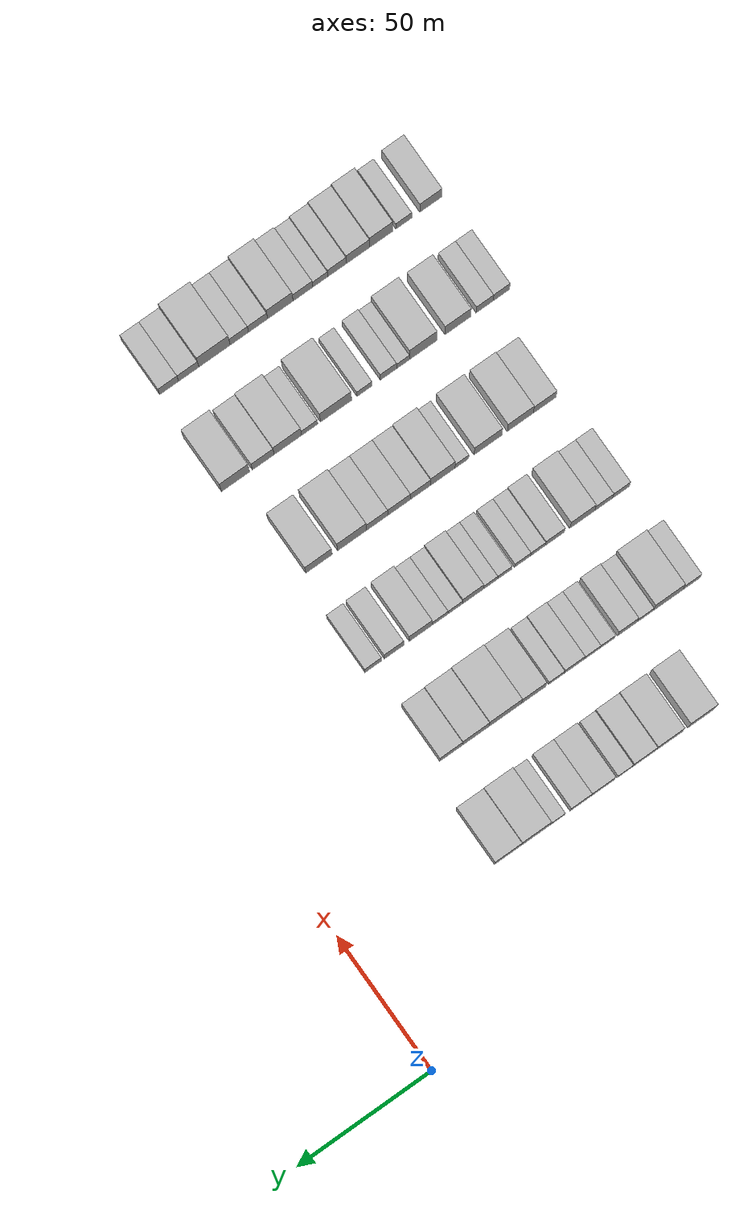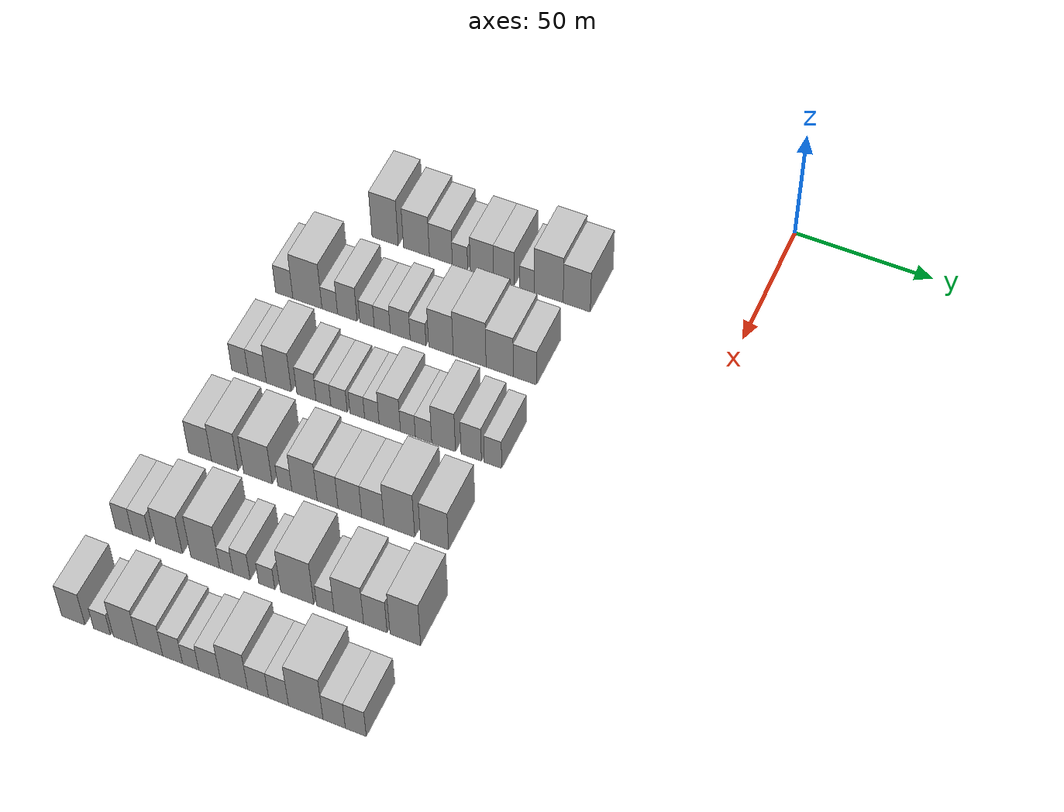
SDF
<sdf version="1.6">
 <world name="default">
  <model name="building_47">
   <static>1</static>
   <pose>50.0000 -127.9156 0 0.000000 0.000000 0.000000</pose>
   <link name="link">
    <pose>0 0 12.00 0 0 0</pose>
    <collision name="collision"><geometry><box><size>20.0000 10.0104 24.0000</size></box></geometry></collision>
    <visual name="visual">
     <cast_shadows>0</cast_shadows>
     <geometry><box><size>20.0000 10.0104 24.0000</size></box></geometry>
     <material>
      <script>
       <uri>model://HANNAS_wall/materials/scripts</uri>
       <uri>model://HANNAS_wall/materials/textures</uri>
       <name>vrc/HANNAS_wall</name>
      </script>
     </material>
    </visual>
   </link>
  </model>
  <model name="building_48">
   <static>1</static>
   <pose>50.0000 -116.0045 0 0.000000 0.000000 0.000000</pose>
   <link name="link">
    <pose>0 0 10.50 0 0 0</pose>
    <collision name="collision"><geometry><box><size>20.0000 9.8119 21.0000</size></box></geometry></collision>
    <visual name="visual">
     <cast_shadows>0</cast_shadows>
     <geometry><box><size>20.0000 9.8119 21.0000</size></box></geometry>
     <material>
      <script>
       <uri>model://HANNAS_wall/materials/scripts</uri>
       <uri>model://HANNAS_wall/materials/textures</uri>
       <name>vrc/HANNAS_wall</name>
      </script>
     </material>
    </visual>
   </link>
  </model>
  <model name="building_49">
   <static>1</static>
   <pose>50.0000 -106.7818 0 0.000000 0.000000 0.000000</pose>
   <link name="link">
    <pose>0 0 9.00 0 0 0</pose>
    <collision name="collision"><geometry><box><size>20.0000 8.6334 18.0000</size></box></geometry></collision>
    <visual name="visual">
     <cast_shadows>0</cast_shadows>
     <geometry><box><size>20.0000 8.6334 18.0000</size></box></geometry>
     <material>
      <script>
       <uri>model://HANNAS_wall/materials/scripts</uri>
       <uri>model://HANNAS_wall/materials/textures</uri>
       <name>vrc/HANNAS_wall</name>
      </script>
     </material>
    </visual>
   </link>
  </model>
  <model name="building_50">
   <static>1</static>
   <pose>50.0000 -99.5850 0 0.000000 0.000000 0.000000</pose>
   <link name="link">
    <pose>0 0 6.00 0 0 0</pose>
    <collision name="collision"><geometry><box><size>20.0000 5.7603 12.0000</size></box></geometry></collision>
    <visual name="visual">
     <cast_shadows>0</cast_shadows>
     <geometry><box><size>20.0000 5.7603 12.0000</size></box></geometry>
     <material>
      <script>
       <uri>model://HANNAS_wall/materials/scripts</uri>
       <uri>model://HANNAS_wall/materials/textures</uri>
       <name>vrc/HANNAS_wall</name>
      </script>
     </material>
    </visual>
   </link>
  </model>
  <model name="building_51">
   <static>1</static>
   <pose>50.0000 -91.3569 0 0.000000 0.000000 0.000000</pose>
   <link name="link">
    <pose>0 0 9.00 0 0 0</pose>
    <collision name="collision"><geometry><box><size>20.0000 8.6960 18.0000</size></box></geometry></collision>
    <visual name="visual">
     <cast_shadows>0</cast_shadows>
     <geometry><box><size>20.0000 8.6960 18.0000</size></box></geometry>
     <material>
      <script>
       <uri>model://HANNAS_wall/materials/scripts</uri>
       <uri>model://HANNAS_wall/materials/textures</uri>
       <name>vrc/HANNAS_wall</name>
      </script>
     </material>
    </visual>
   </link>
  </model>
  <model name="building_52">
   <static>1</static>
   <pose>50.0000 -83.1572 0 0.000000 0.000000 0.000000</pose>
   <link name="link">
    <pose>0 0 9.00 0 0 0</pose>
    <collision name="collision"><geometry><box><size>20.0000 7.7034 18.0000</size></box></geometry></collision>
    <visual name="visual">
     <cast_shadows>0</cast_shadows>
     <geometry><box><size>20.0000 7.7034 18.0000</size></box></geometry>
     <material>
      <script>
       <uri>model://HANNAS_wall/materials/scripts</uri>
       <uri>model://HANNAS_wall/materials/textures</uri>
       <name>vrc/HANNAS_wall</name>
      </script>
     </material>
    </visual>
   </link>
  </model>
  <model name="building_53">
   <static>1</static>
   <pose>50.0000 -74.6181 0 0.000000 0.000000 0.000000</pose>
   <link name="link">
    <pose>0 0 6.00 0 0 0</pose>
    <collision name="collision"><geometry><box><size>20.0000 5.3748 12.0000</size></box></geometry></collision>
    <visual name="visual">
     <cast_shadows>0</cast_shadows>
     <geometry><box><size>20.0000 5.3748 12.0000</size></box></geometry>
     <material>
      <script>
       <uri>model://HANNAS_wall/materials/scripts</uri>
       <uri>model://HANNAS_wall/materials/textures</uri>
       <name>vrc/HANNAS_wall</name>
      </script>
     </material>
    </visual>
   </link>
  </model>
  <model name="building_54">
   <static>1</static>
   <pose>50.0000 -66.5913 0 0.000000 0.000000 0.000000</pose>
   <link name="link">
    <pose>0 0 12.00 0 0 0</pose>
    <collision name="collision"><geometry><box><size>20.0000 10.6787 24.0000</size></box></geometry></collision>
    <visual name="visual">
     <cast_shadows>0</cast_shadows>
     <geometry><box><size>20.0000 10.6787 24.0000</size></box></geometry>
     <material>
      <script>
       <uri>model://HANNAS_wall/materials/scripts</uri>
       <uri>model://HANNAS_wall/materials/textures</uri>
       <name>vrc/HANNAS_wall</name>
      </script>
     </material>
    </visual>
   </link>
  </model>
  <model name="building_55">
   <static>1</static>
   <pose>50.0000 -56.2801 0 0.000000 0.000000 0.000000</pose>
   <link name="link">
    <pose>0 0 10.50 0 0 0</pose>
    <collision name="collision"><geometry><box><size>20.0000 9.9435 21.0000</size></box></geometry></collision>
    <visual name="visual">
     <cast_shadows>0</cast_shadows>
     <geometry><box><size>20.0000 9.9435 21.0000</size></box></geometry>
     <material>
      <script>
       <uri>model://HANNAS_wall/materials/scripts</uri>
       <uri>model://HANNAS_wall/materials/textures</uri>
       <name>vrc/HANNAS_wall</name>
      </script>
     </material>
    </visual>
   </link>
  </model>
  <model name="building_164">
   <static>1</static>
   <pose>85.0000 -149.0392 0 0.000000 0.000000 0.000000</pose>
   <link name="link">
    <pose>0 0 7.50 0 0 0</pose>
    <collision name="collision"><geometry><box><size>20.0000 6.5100 15.0000</size></box></geometry></collision>
    <visual name="visual">
     <cast_shadows>0</cast_shadows>
     <geometry><box><size>20.0000 6.5100 15.0000</size></box></geometry>
     <material>
      <script>
       <uri>model://HANNAS_wall/materials/scripts</uri>
       <uri>model://HANNAS_wall/materials/textures</uri>
       <name>vrc/HANNAS_wall</name>
      </script>
     </material>
    </visual>
   </link>
  </model>
  <model name="building_165">
   <static>1</static>
   <pose>85.0000 -140.2922 0 0.000000 0.000000 0.000000</pose>
   <link name="link">
    <pose>0 0 12.00 0 0 0</pose>
    <collision name="collision"><geometry><box><size>20.0000 10.9840 24.0000</size></box></geometry></collision>
    <visual name="visual">
     <cast_shadows>0</cast_shadows>
     <geometry><box><size>20.0000 10.9840 24.0000</size></box></geometry>
     <material>
      <script>
       <uri>model://HANNAS_wall/materials/scripts</uri>
       <uri>model://HANNAS_wall/materials/textures</uri>
       <name>vrc/HANNAS_wall</name>
      </script>
     </material>
    </visual>
   </link>
  </model>
  <model name="building_166">
   <static>1</static>
   <pose>85.0000 -131.8723 0 0.000000 0.000000 0.000000</pose>
   <link name="link">
    <pose>0 0 6.00 0 0 0</pose>
    <collision name="collision"><geometry><box><size>20.0000 5.8558 12.0000</size></box></geometry></collision>
    <visual name="visual">
     <cast_shadows>0</cast_shadows>
     <geometry><box><size>20.0000 5.8558 12.0000</size></box></geometry>
     <material>
      <script>
       <uri>model://HANNAS_wall/materials/scripts</uri>
       <uri>model://HANNAS_wall/materials/textures</uri>
       <name>vrc/HANNAS_wall</name>
      </script>
     </material>
    </visual>
   </link>
  </model>
  <model name="building_167">
   <static>1</static>
   <pose>85.0000 -125.2874 0 0.000000 0.000000 0.000000</pose>
   <link name="link">
    <pose>0 0 9.00 0 0 0</pose>
    <collision name="collision"><geometry><box><size>20.0000 7.3140 18.0000</size></box></geometry></collision>
    <visual name="visual">
     <cast_shadows>0</cast_shadows>
     <geometry><box><size>20.0000 7.3140 18.0000</size></box></geometry>
     <material>
      <script>
       <uri>model://HANNAS_wall/materials/scripts</uri>
       <uri>model://HANNAS_wall/materials/textures</uri>
       <name>vrc/HANNAS_wall</name>
      </script>
     </material>
    </visual>
   </link>
  </model>
  <model name="building_168">
   <static>1</static>
   <pose>85.0000 -117.9332 0 0.000000 0.000000 0.000000</pose>
   <link name="link">
    <pose>0 0 6.00 0 0 0</pose>
    <collision name="collision"><geometry><box><size>20.0000 5.3945 12.0000</size></box></geometry></collision>
    <visual name="visual">
     <cast_shadows>0</cast_shadows>
     <geometry><box><size>20.0000 5.3945 12.0000</size></box></geometry>
     <material>
      <script>
       <uri>model://HANNAS_wall/materials/scripts</uri>
       <uri>model://HANNAS_wall/materials/textures</uri>
       <name>vrc/HANNAS_wall</name>
      </script>
     </material>
    </visual>
   </link>
  </model>
  <model name="building_169">
   <static>1</static>
   <pose>85.0000 -112.2556 0 0.000000 0.000000 0.000000</pose>
   <link name="link">
    <pose>0 0 6.00 0 0 0</pose>
    <collision name="collision"><geometry><box><size>20.0000 5.9608 12.0000</size></box></geometry></collision>
    <visual name="visual">
     <cast_shadows>0</cast_shadows>
     <geometry><box><size>20.0000 5.9608 12.0000</size></box></geometry>
     <material>
      <script>
       <uri>model://HANNAS_wall/materials/scripts</uri>
       <uri>model://HANNAS_wall/materials/textures</uri>
       <name>vrc/HANNAS_wall</name>
      </script>
     </material>
    </visual>
   </link>
  </model>
  <model name="building_170">
   <static>1</static>
   <pose>85.0000 -105.5950 0 0.000000 0.000000 0.000000</pose>
   <link name="link">
    <pose>0 0 7.50 0 0 0</pose>
    <collision name="collision"><geometry><box><size>20.0000 7.3603 15.0000</size></box></geometry></collision>
    <visual name="visual">
     <cast_shadows>0</cast_shadows>
     <geometry><box><size>20.0000 7.3603 15.0000</size></box></geometry>
     <material>
      <script>
       <uri>model://HANNAS_wall/materials/scripts</uri>
       <uri>model://HANNAS_wall/materials/textures</uri>
       <name>vrc/HANNAS_wall</name>
      </script>
     </material>
    </visual>
   </link>
  </model>
  <model name="building_171">
   <static>1</static>
   <pose>85.0000 -98.9970 0 0.000000 0.000000 0.000000</pose>
   <link name="link">
    <pose>0 0 6.00 0 0 0</pose>
    <collision name="collision"><geometry><box><size>20.0000 5.8358 12.0000</size></box></geometry></collision>
    <visual name="visual">
     <cast_shadows>0</cast_shadows>
     <geometry><box><size>20.0000 5.8358 12.0000</size></box></geometry>
     <material>
      <script>
       <uri>model://HANNAS_wall/materials/scripts</uri>
       <uri>model://HANNAS_wall/materials/textures</uri>
       <name>vrc/HANNAS_wall</name>
      </script>
     </material>
    </visual>
   </link>
  </model>
  <model name="building_172">
   <static>1</static>
   <pose>85.0000 -90.5649 0 0.000000 0.000000 0.000000</pose>
   <link name="link">
    <pose>0 0 10.50 0 0 0</pose>
    <collision name="collision"><geometry><box><size>20.0000 9.0284 21.0000</size></box></geometry></collision>
    <visual name="visual">
     <cast_shadows>0</cast_shadows>
     <geometry><box><size>20.0000 9.0284 21.0000</size></box></geometry>
     <material>
      <script>
       <uri>model://HANNAS_wall/materials/scripts</uri>
       <uri>model://HANNAS_wall/materials/textures</uri>
       <name>vrc/HANNAS_wall</name>
      </script>
     </material>
    </visual>
   </link>
  </model>
  <model name="building_173">
   <static>1</static>
   <pose>85.0000 -80.0565 0 0.000000 0.000000 0.000000</pose>
   <link name="link">
    <pose>0 0 12.00 0 0 0</pose>
    <collision name="collision"><geometry><box><size>20.0000 11.9884 24.0000</size></box></geometry></collision>
    <visual name="visual">
     <cast_shadows>0</cast_shadows>
     <geometry><box><size>20.0000 11.9884 24.0000</size></box></geometry>
     <material>
      <script>
       <uri>model://HANNAS_wall/materials/scripts</uri>
       <uri>model://HANNAS_wall/materials/textures</uri>
       <name>vrc/HANNAS_wall</name>
      </script>
     </material>
    </visual>
   </link>
  </model>
  <model name="building_174">
   <static>1</static>
   <pose>85.0000 -69.1293 0 0.000000 0.000000 0.000000</pose>
   <link name="link">
    <pose>0 0 10.50 0 0 0</pose>
    <collision name="collision"><geometry><box><size>20.0000 9.8661 21.0000</size></box></geometry></collision>
    <visual name="visual">
     <cast_shadows>0</cast_shadows>
     <geometry><box><size>20.0000 9.8661 21.0000</size></box></geometry>
     <material>
      <script>
       <uri>model://HANNAS_wall/materials/scripts</uri>
       <uri>model://HANNAS_wall/materials/textures</uri>
       <name>vrc/HANNAS_wall</name>
      </script>
     </material>
    </visual>
   </link>
  </model>
  <model name="building_175">
   <static>1</static>
   <pose>85.0000 -59.9994 0 0.000000 0.000000 0.000000</pose>
   <link name="link">
    <pose>0 0 9.00 0 0 0</pose>
    <collision name="collision"><geometry><box><size>20.0000 8.3937 18.0000</size></box></geometry></collision>
    <visual name="visual">
     <cast_shadows>0</cast_shadows>
     <geometry><box><size>20.0000 8.3937 18.0000</size></box></geometry>
     <material>
      <script>
       <uri>model://HANNAS_wall/materials/scripts</uri>
       <uri>model://HANNAS_wall/materials/textures</uri>
       <name>vrc/HANNAS_wall</name>
      </script>
     </material>
    </visual>
   </link>
  </model>
  <model name="building_296">
   <static>1</static>
   <pose>120.0000 -147.7365 0 0.000000 0.000000 0.000000</pose>
   <link name="link">
    <pose>0 0 7.50 0 0 0</pose>
    <collision name="collision"><geometry><box><size>20.0000 6.1762 15.0000</size></box></geometry></collision>
    <visual name="visual">
     <cast_shadows>0</cast_shadows>
     <geometry><box><size>20.0000 6.1762 15.0000</size></box></geometry>
     <material>
      <script>
       <uri>model://HANNAS_wall/materials/scripts</uri>
       <uri>model://HANNAS_wall/materials/textures</uri>
       <name>vrc/HANNAS_wall</name>
      </script>
     </material>
    </visual>
   </link>
  </model>
  <model name="building_297">
   <static>1</static>
   <pose>120.0000 -141.2915 0 0.000000 0.000000 0.000000</pose>
   <link name="link">
    <pose>0 0 7.50 0 0 0</pose>
    <collision name="collision"><geometry><box><size>20.0000 6.7138 15.0000</size></box></geometry></collision>
    <visual name="visual">
     <cast_shadows>0</cast_shadows>
     <geometry><box><size>20.0000 6.7138 15.0000</size></box></geometry>
     <material>
      <script>
       <uri>model://HANNAS_wall/materials/scripts</uri>
       <uri>model://HANNAS_wall/materials/textures</uri>
       <name>vrc/HANNAS_wall</name>
      </script>
     </material>
    </visual>
   </link>
  </model>
  <model name="building_298">
   <static>1</static>
   <pose>120.0000 -133.3171 0 0.000000 0.000000 0.000000</pose>
   <link name="link">
    <pose>0 0 10.50 0 0 0</pose>
    <collision name="collision"><geometry><box><size>20.0000 9.2349 21.0000</size></box></geometry></collision>
    <visual name="visual">
     <cast_shadows>0</cast_shadows>
     <geometry><box><size>20.0000 9.2349 21.0000</size></box></geometry>
     <material>
      <script>
       <uri>model://HANNAS_wall/materials/scripts</uri>
       <uri>model://HANNAS_wall/materials/textures</uri>
       <name>vrc/HANNAS_wall</name>
      </script>
     </material>
    </visual>
   </link>
  </model>
  <model name="building_299">
   <static>1</static>
   <pose>120.0000 -123.1581 0 0.000000 0.000000 0.000000</pose>
   <link name="link">
    <pose>0 0 7.50 0 0 0</pose>
    <collision name="collision"><geometry><box><size>20.0000 7.0833 15.0000</size></box></geometry></collision>
    <visual name="visual">
     <cast_shadows>0</cast_shadows>
     <geometry><box><size>20.0000 7.0833 15.0000</size></box></geometry>
     <material>
      <script>
       <uri>model://HANNAS_wall/materials/scripts</uri>
       <uri>model://HANNAS_wall/materials/textures</uri>
       <name>vrc/HANNAS_wall</name>
      </script>
     </material>
    </visual>
   </link>
  </model>
  <model name="building_300">
   <static>1</static>
   <pose>120.0000 -116.9021 0 0.000000 0.000000 0.000000</pose>
   <link name="link">
    <pose>0 0 6.00 0 0 0</pose>
    <collision name="collision"><geometry><box><size>20.0000 5.4286 12.0000</size></box></geometry></collision>
    <visual name="visual">
     <cast_shadows>0</cast_shadows>
     <geometry><box><size>20.0000 5.4286 12.0000</size></box></geometry>
     <material>
      <script>
       <uri>model://HANNAS_wall/materials/scripts</uri>
       <uri>model://HANNAS_wall/materials/textures</uri>
       <name>vrc/HANNAS_wall</name>
      </script>
     </material>
    </visual>
   </link>
  </model>
  <model name="building_301">
   <static>1</static>
   <pose>120.0000 -111.2069 0 0.000000 0.000000 0.000000</pose>
   <link name="link">
    <pose>0 0 6.00 0 0 0</pose>
    <collision name="collision"><geometry><box><size>20.0000 5.9618 12.0000</size></box></geometry></collision>
    <visual name="visual">
     <cast_shadows>0</cast_shadows>
     <geometry><box><size>20.0000 5.9618 12.0000</size></box></geometry>
     <material>
      <script>
       <uri>model://HANNAS_wall/materials/scripts</uri>
       <uri>model://HANNAS_wall/materials/textures</uri>
       <name>vrc/HANNAS_wall</name>
      </script>
     </material>
    </visual>
   </link>
  </model>
  <model name="building_302">
   <static>1</static>
   <pose>120.0000 -104.5623 0 0.000000 0.000000 0.000000</pose>
   <link name="link">
    <pose>0 0 6.00 0 0 0</pose>
    <collision name="collision"><geometry><box><size>20.0000 5.3275 12.0000</size></box></geometry></collision>
    <visual name="visual">
     <cast_shadows>0</cast_shadows>
     <geometry><box><size>20.0000 5.3275 12.0000</size></box></geometry>
     <material>
      <script>
       <uri>model://HANNAS_wall/materials/scripts</uri>
       <uri>model://HANNAS_wall/materials/textures</uri>
       <name>vrc/HANNAS_wall</name>
      </script>
     </material>
    </visual>
   </link>
  </model>
  <model name="building_303">
   <static>1</static>
   <pose>120.0000 -99.2772 0 0.000000 0.000000 0.000000</pose>
   <link name="link">
    <pose>0 0 6.00 0 0 0</pose>
    <collision name="collision"><geometry><box><size>20.0000 5.2427 12.0000</size></box></geometry></collision>
    <visual name="visual">
     <cast_shadows>0</cast_shadows>
     <geometry><box><size>20.0000 5.2427 12.0000</size></box></geometry>
     <material>
      <script>
       <uri>model://HANNAS_wall/materials/scripts</uri>
       <uri>model://HANNAS_wall/materials/textures</uri>
       <name>vrc/HANNAS_wall</name>
      </script>
     </material>
    </visual>
   </link>
  </model>
  <model name="building_304">
   <static>1</static>
   <pose>120.0000 -92.7966 0 0.000000 0.000000 0.000000</pose>
   <link name="link">
    <pose>0 0 9.00 0 0 0</pose>
    <collision name="collision"><geometry><box><size>20.0000 7.7185 18.0000</size></box></geometry></collision>
    <visual name="visual">
     <cast_shadows>0</cast_shadows>
     <geometry><box><size>20.0000 7.7185 18.0000</size></box></geometry>
     <material>
      <script>
       <uri>model://HANNAS_wall/materials/scripts</uri>
       <uri>model://HANNAS_wall/materials/textures</uri>
       <name>vrc/HANNAS_wall</name>
      </script>
     </material>
    </visual>
   </link>
  </model>
  <model name="building_305">
   <static>1</static>
   <pose>120.0000 -86.2622 0 0.000000 0.000000 0.000000</pose>
   <link name="link">
    <pose>0 0 6.00 0 0 0</pose>
    <collision name="collision"><geometry><box><size>20.0000 5.3503 12.0000</size></box></geometry></collision>
    <visual name="visual">
     <cast_shadows>0</cast_shadows>
     <geometry><box><size>20.0000 5.3503 12.0000</size></box></geometry>
     <material>
      <script>
       <uri>model://HANNAS_wall/materials/scripts</uri>
       <uri>model://HANNAS_wall/materials/textures</uri>
       <name>vrc/HANNAS_wall</name>
      </script>
     </material>
    </visual>
   </link>
  </model>
  <model name="building_306">
   <static>1</static>
   <pose>120.0000 -80.6427 0 0.000000 0.000000 0.000000</pose>
   <link name="link">
    <pose>0 0 6.00 0 0 0</pose>
    <collision name="collision"><geometry><box><size>20.0000 5.8887 12.0000</size></box></geometry></collision>
    <visual name="visual">
     <cast_shadows>0</cast_shadows>
     <geometry><box><size>20.0000 5.8887 12.0000</size></box></geometry>
     <material>
      <script>
       <uri>model://HANNAS_wall/materials/scripts</uri>
       <uri>model://HANNAS_wall/materials/textures</uri>
       <name>vrc/HANNAS_wall</name>
      </script>
     </material>
    </visual>
   </link>
  </model>
  <model name="building_307">
   <static>1</static>
   <pose>120.0000 -73.4579 0 0.000000 0.000000 0.000000</pose>
   <link name="link">
    <pose>0 0 10.50 0 0 0</pose>
    <collision name="collision"><geometry><box><size>20.0000 8.4810 21.0000</size></box></geometry></collision>
    <visual name="visual">
     <cast_shadows>0</cast_shadows>
     <geometry><box><size>20.0000 8.4810 21.0000</size></box></geometry>
     <material>
      <script>
       <uri>model://HANNAS_wall/materials/scripts</uri>
       <uri>model://HANNAS_wall/materials/textures</uri>
       <name>vrc/HANNAS_wall</name>
      </script>
     </material>
    </visual>
   </link>
  </model>
  <model name="building_308">
   <static>1</static>
   <pose>120.0000 -63.6057 0 0.000000 0.000000 0.000000</pose>
   <link name="link">
    <pose>0 0 9.00 0 0 0</pose>
    <collision name="collision"><geometry><box><size>20.0000 7.2233 18.0000</size></box></geometry></collision>
    <visual name="visual">
     <cast_shadows>0</cast_shadows>
     <geometry><box><size>20.0000 7.2233 18.0000</size></box></geometry>
     <material>
      <script>
       <uri>model://HANNAS_wall/materials/scripts</uri>
       <uri>model://HANNAS_wall/materials/textures</uri>
       <name>vrc/HANNAS_wall</name>
      </script>
     </material>
    </visual>
   </link>
  </model>
  <model name="building_309">
   <static>1</static>
   <pose>120.0000 -55.9099 0 0.000000 0.000000 0.000000</pose>
   <link name="link">
    <pose>0 0 7.50 0 0 0</pose>
    <collision name="collision"><geometry><box><size>20.0000 6.1684 15.0000</size></box></geometry></collision>
    <visual name="visual">
     <cast_shadows>0</cast_shadows>
     <geometry><box><size>20.0000 6.1684 15.0000</size></box></geometry>
     <material>
      <script>
       <uri>model://HANNAS_wall/materials/scripts</uri>
       <uri>model://HANNAS_wall/materials/textures</uri>
       <name>vrc/HANNAS_wall</name>
      </script>
     </material>
    </visual>
   </link>
  </model>
  <model name="building_426">
   <static>1</static>
   <pose>155.0000 -144.1316 0 0.000000 0.000000 0.000000</pose>
   <link name="link">
    <pose>0 0 9.00 0 0 0</pose>
    <collision name="collision"><geometry><box><size>20.0000 8.4185 18.0000</size></box></geometry></collision>
    <visual name="visual">
     <cast_shadows>0</cast_shadows>
     <geometry><box><size>20.0000 8.4185 18.0000</size></box></geometry>
     <material>
      <script>
       <uri>model://HANNAS_wall/materials/scripts</uri>
       <uri>model://HANNAS_wall/materials/textures</uri>
       <name>vrc/HANNAS_wall</name>
      </script>
     </material>
    </visual>
   </link>
  </model>
  <model name="building_427">
   <static>1</static>
   <pose>155.0000 -135.0922 0 0.000000 0.000000 0.000000</pose>
   <link name="link">
    <pose>0 0 10.50 0 0 0</pose>
    <collision name="collision"><geometry><box><size>20.0000 9.6602 21.0000</size></box></geometry></collision>
    <visual name="visual">
     <cast_shadows>0</cast_shadows>
     <geometry><box><size>20.0000 9.6602 21.0000</size></box></geometry>
     <material>
      <script>
       <uri>model://HANNAS_wall/materials/scripts</uri>
       <uri>model://HANNAS_wall/materials/textures</uri>
       <name>vrc/HANNAS_wall</name>
      </script>
     </material>
    </visual>
   </link>
  </model>
  <model name="building_428">
   <static>1</static>
   <pose>155.0000 -123.1001 0 0.000000 0.000000 0.000000</pose>
   <link name="link">
    <pose>0 0 10.50 0 0 0</pose>
    <collision name="collision"><geometry><box><size>20.0000 10.3241 21.0000</size></box></geometry></collision>
    <visual name="visual">
     <cast_shadows>0</cast_shadows>
     <geometry><box><size>20.0000 10.3241 21.0000</size></box></geometry>
     <material>
      <script>
       <uri>model://HANNAS_wall/materials/scripts</uri>
       <uri>model://HANNAS_wall/materials/textures</uri>
       <name>vrc/HANNAS_wall</name>
      </script>
     </material>
    </visual>
   </link>
  </model>
  <model name="building_429">
   <static>1</static>
   <pose>155.0000 -113.3941 0 0.000000 0.000000 0.000000</pose>
   <link name="link">
    <pose>0 0 6.00 0 0 0</pose>
    <collision name="collision"><geometry><box><size>20.0000 5.0879 12.0000</size></box></geometry></collision>
    <visual name="visual">
     <cast_shadows>0</cast_shadows>
     <geometry><box><size>20.0000 5.0879 12.0000</size></box></geometry>
     <material>
      <script>
       <uri>model://HANNAS_wall/materials/scripts</uri>
       <uri>model://HANNAS_wall/materials/textures</uri>
       <name>vrc/HANNAS_wall</name>
      </script>
     </material>
    </visual>
   </link>
  </model>
  <model name="building_430">
   <static>1</static>
   <pose>155.0000 -106.3375 0 0.000000 0.000000 0.000000</pose>
   <link name="link">
    <pose>0 0 10.50 0 0 0</pose>
    <collision name="collision"><geometry><box><size>20.0000 9.0252 21.0000</size></box></geometry></collision>
    <visual name="visual">
     <cast_shadows>0</cast_shadows>
     <geometry><box><size>20.0000 9.0252 21.0000</size></box></geometry>
     <material>
      <script>
       <uri>model://HANNAS_wall/materials/scripts</uri>
       <uri>model://HANNAS_wall/materials/textures</uri>
       <name>vrc/HANNAS_wall</name>
      </script>
     </material>
    </visual>
   </link>
  </model>
  <model name="building_431">
   <static>1</static>
   <pose>155.0000 -98.1015 0 0.000000 0.000000 0.000000</pose>
   <link name="link">
    <pose>0 0 9.00 0 0 0</pose>
    <collision name="collision"><geometry><box><size>20.0000 7.4468 18.0000</size></box></geometry></collision>
    <visual name="visual">
     <cast_shadows>0</cast_shadows>
     <geometry><box><size>20.0000 7.4468 18.0000</size></box></geometry>
     <material>
      <script>
       <uri>model://HANNAS_wall/materials/scripts</uri>
       <uri>model://HANNAS_wall/materials/textures</uri>
       <name>vrc/HANNAS_wall</name>
      </script>
     </material>
    </visual>
   </link>
  </model>
  <model name="building_432">
   <static>1</static>
   <pose>155.0000 -90.1867 0 0.000000 0.000000 0.000000</pose>
   <link name="link">
    <pose>0 0 9.00 0 0 0</pose>
    <collision name="collision"><geometry><box><size>20.0000 8.3827 18.0000</size></box></geometry></collision>
    <visual name="visual">
     <cast_shadows>0</cast_shadows>
     <geometry><box><size>20.0000 8.3827 18.0000</size></box></geometry>
     <material>
      <script>
       <uri>model://HANNAS_wall/materials/scripts</uri>
       <uri>model://HANNAS_wall/materials/textures</uri>
       <name>vrc/HANNAS_wall</name>
      </script>
     </material>
    </visual>
   </link>
  </model>
  <model name="building_433">
   <static>1</static>
   <pose>155.0000 -82.0440 0 0.000000 0.000000 0.000000</pose>
   <link name="link">
    <pose>0 0 9.00 0 0 0</pose>
    <collision name="collision"><geometry><box><size>20.0000 7.9028 18.0000</size></box></geometry></collision>
    <visual name="visual">
     <cast_shadows>0</cast_shadows>
     <geometry><box><size>20.0000 7.9028 18.0000</size></box></geometry>
     <material>
      <script>
       <uri>model://HANNAS_wall/materials/scripts</uri>
       <uri>model://HANNAS_wall/materials/textures</uri>
       <name>vrc/HANNAS_wall</name>
      </script>
     </material>
    </visual>
   </link>
  </model>
  <model name="building_434">
   <static>1</static>
   <pose>155.0000 -72.7205 0 0.000000 0.000000 0.000000</pose>
   <link name="link">
    <pose>0 0 12.00 0 0 0</pose>
    <collision name="collision"><geometry><box><size>20.0000 10.7441 24.0000</size></box></geometry></collision>
    <visual name="visual">
     <cast_shadows>0</cast_shadows>
     <geometry><box><size>20.0000 10.7441 24.0000</size></box></geometry>
     <material>
      <script>
       <uri>model://HANNAS_wall/materials/scripts</uri>
       <uri>model://HANNAS_wall/materials/textures</uri>
       <name>vrc/HANNAS_wall</name>
      </script>
     </material>
    </visual>
   </link>
  </model>
  <model name="building_435">
   <static>1</static>
   <pose>155.0000 -60.4454 0 0.000000 0.000000 0.000000</pose>
   <link name="link">
    <pose>0 0 10.50 0 0 0</pose>
    <collision name="collision"><geometry><box><size>20.0000 9.8061 21.0000</size></box></geometry></collision>
    <visual name="visual">
     <cast_shadows>0</cast_shadows>
     <geometry><box><size>20.0000 9.8061 21.0000</size></box></geometry>
     <material>
      <script>
       <uri>model://HANNAS_wall/materials/scripts</uri>
       <uri>model://HANNAS_wall/materials/textures</uri>
       <name>vrc/HANNAS_wall</name>
      </script>
     </material>
    </visual>
   </link>
  </model>
  <model name="building_559">
   <static>1</static>
   <pose>190.0000 -152.8235 0 0.000000 0.000000 0.000000</pose>
   <link name="link">
    <pose>0 0 7.50 0 0 0</pose>
    <collision name="collision"><geometry><box><size>20.0000 6.0489 15.0000</size></box></geometry></collision>
    <visual name="visual">
     <cast_shadows>0</cast_shadows>
     <geometry><box><size>20.0000 6.0489 15.0000</size></box></geometry>
     <material>
      <script>
       <uri>model://HANNAS_wall/materials/scripts</uri>
       <uri>model://HANNAS_wall/materials/textures</uri>
       <name>vrc/HANNAS_wall</name>
      </script>
     </material>
    </visual>
   </link>
  </model>
  <model name="building_560">
   <static>1</static>
   <pose>190.0000 -146.6075 0 0.000000 0.000000 0.000000</pose>
   <link name="link">
    <pose>0 0 7.50 0 0 0</pose>
    <collision name="collision"><geometry><box><size>20.0000 6.3830 15.0000</size></box></geometry></collision>
    <visual name="visual">
     <cast_shadows>0</cast_shadows>
     <geometry><box><size>20.0000 6.3830 15.0000</size></box></geometry>
     <material>
      <script>
       <uri>model://HANNAS_wall/materials/scripts</uri>
       <uri>model://HANNAS_wall/materials/textures</uri>
       <name>vrc/HANNAS_wall</name>
      </script>
     </material>
    </visual>
   </link>
  </model>
  <model name="building_561">
   <static>1</static>
   <pose>190.0000 -136.6311 0 0.000000 0.000000 0.000000</pose>
   <link name="link">
    <pose>0 0 10.50 0 0 0</pose>
    <collision name="collision"><geometry><box><size>20.0000 9.5699 21.0000</size></box></geometry></collision>
    <visual name="visual">
     <cast_shadows>0</cast_shadows>
     <geometry><box><size>20.0000 9.5699 21.0000</size></box></geometry>
     <material>
      <script>
       <uri>model://HANNAS_wall/materials/scripts</uri>
       <uri>model://HANNAS_wall/materials/textures</uri>
       <name>vrc/HANNAS_wall</name>
      </script>
     </material>
    </visual>
   </link>
  </model>
  <model name="building_562">
   <static>1</static>
   <pose>190.0000 -123.7625 0 0.000000 0.000000 0.000000</pose>
   <link name="link">
    <pose>0 0 12.00 0 0 0</pose>
    <collision name="collision"><geometry><box><size>20.0000 10.1675 24.0000</size></box></geometry></collision>
    <visual name="visual">
     <cast_shadows>0</cast_shadows>
     <geometry><box><size>20.0000 10.1675 24.0000</size></box></geometry>
     <material>
      <script>
       <uri>model://HANNAS_wall/materials/scripts</uri>
       <uri>model://HANNAS_wall/materials/textures</uri>
       <name>vrc/HANNAS_wall</name>
      </script>
     </material>
    </visual>
   </link>
  </model>
  <model name="building_563">
   <static>1</static>
   <pose>190.0000 -116.2769 0 0.000000 0.000000 0.000000</pose>
   <link name="link">
    <pose>0 0 6.00 0 0 0</pose>
    <collision name="collision"><geometry><box><size>20.0000 4.8036 12.0000</size></box></geometry></collision>
    <visual name="visual">
     <cast_shadows>0</cast_shadows>
     <geometry><box><size>20.0000 4.8036 12.0000</size></box></geometry>
     <material>
      <script>
       <uri>model://HANNAS_wall/materials/scripts</uri>
       <uri>model://HANNAS_wall/materials/textures</uri>
       <name>vrc/HANNAS_wall</name>
      </script>
     </material>
    </visual>
   </link>
  </model>
  <model name="building_564">
   <static>1</static>
   <pose>190.0000 -110.8596 0 0.000000 0.000000 0.000000</pose>
   <link name="link">
    <pose>0 0 7.50 0 0 0</pose>
    <collision name="collision"><geometry><box><size>20.0000 6.0311 15.0000</size></box></geometry></collision>
    <visual name="visual">
     <cast_shadows>0</cast_shadows>
     <geometry><box><size>20.0000 6.0311 15.0000</size></box></geometry>
     <material>
      <script>
       <uri>model://HANNAS_wall/materials/scripts</uri>
       <uri>model://HANNAS_wall/materials/textures</uri>
       <name>vrc/HANNAS_wall</name>
      </script>
     </material>
    </visual>
   </link>
  </model>
  <model name="building_565">
   <static>1</static>
   <pose>190.0000 -102.0186 0 0.000000 0.000000 0.000000</pose>
   <link name="link">
    <pose>0 0 6.00 0 0 0</pose>
    <collision name="collision"><geometry><box><size>20.0000 5.6508 12.0000</size></box></geometry></collision>
    <visual name="visual">
     <cast_shadows>0</cast_shadows>
     <geometry><box><size>20.0000 5.6508 12.0000</size></box></geometry>
     <material>
      <script>
       <uri>model://HANNAS_wall/materials/scripts</uri>
       <uri>model://HANNAS_wall/materials/textures</uri>
       <name>vrc/HANNAS_wall</name>
      </script>
     </material>
    </visual>
   </link>
  </model>
  <model name="building_566">
   <static>1</static>
   <pose>190.0000 -91.4091 0 0.000000 0.000000 0.000000</pose>
   <link name="link">
    <pose>0 0 12.00 0 0 0</pose>
    <collision name="collision"><geometry><box><size>20.0000 11.5682 24.0000</size></box></geometry></collision>
    <visual name="visual">
     <cast_shadows>0</cast_shadows>
     <geometry><box><size>20.0000 11.5682 24.0000</size></box></geometry>
     <material>
      <script>
       <uri>model://HANNAS_wall/materials/scripts</uri>
       <uri>model://HANNAS_wall/materials/textures</uri>
       <name>vrc/HANNAS_wall</name>
      </script>
     </material>
    </visual>
   </link>
  </model>
  <model name="building_567">
   <static>1</static>
   <pose>190.0000 -81.6254 0 0.000000 0.000000 0.000000</pose>
   <link name="link">
    <pose>0 0 6.00 0 0 0</pose>
    <collision name="collision"><geometry><box><size>20.0000 5.9992 12.0000</size></box></geometry></collision>
    <visual name="visual">
     <cast_shadows>0</cast_shadows>
     <geometry><box><size>20.0000 5.9992 12.0000</size></box></geometry>
     <material>
      <script>
       <uri>model://HANNAS_wall/materials/scripts</uri>
       <uri>model://HANNAS_wall/materials/textures</uri>
       <name>vrc/HANNAS_wall</name>
      </script>
     </material>
    </visual>
   </link>
  </model>
  <model name="building_568">
   <static>1</static>
   <pose>190.0000 -73.5351 0 0.000000 0.000000 0.000000</pose>
   <link name="link">
    <pose>0 0 10.50 0 0 0</pose>
    <collision name="collision"><geometry><box><size>20.0000 10.1815 21.0000</size></box></geometry></collision>
    <visual name="visual">
     <cast_shadows>0</cast_shadows>
     <geometry><box><size>20.0000 10.1815 21.0000</size></box></geometry>
     <material>
      <script>
       <uri>model://HANNAS_wall/materials/scripts</uri>
       <uri>model://HANNAS_wall/materials/textures</uri>
       <name>vrc/HANNAS_wall</name>
      </script>
     </material>
    </visual>
   </link>
  </model>
  <model name="building_569">
   <static>1</static>
   <pose>190.0000 -64.4035 0 0.000000 0.000000 0.000000</pose>
   <link name="link">
    <pose>0 0 9.00 0 0 0</pose>
    <collision name="collision"><geometry><box><size>20.0000 8.0816 18.0000</size></box></geometry></collision>
    <visual name="visual">
     <cast_shadows>0</cast_shadows>
     <geometry><box><size>20.0000 8.0816 18.0000</size></box></geometry>
     <material>
      <script>
       <uri>model://HANNAS_wall/materials/scripts</uri>
       <uri>model://HANNAS_wall/materials/textures</uri>
       <name>vrc/HANNAS_wall</name>
      </script>
     </material>
    </visual>
   </link>
  </model>
  <model name="building_570">
   <static>1</static>
   <pose>190.0000 -54.1487 0 0.000000 0.000000 0.000000</pose>
   <link name="link">
    <pose>0 0 12.00 0 0 0</pose>
    <collision name="collision"><geometry><box><size>20.0000 10.4280 24.0000</size></box></geometry></collision>
    <visual name="visual">
     <cast_shadows>0</cast_shadows>
     <geometry><box><size>20.0000 10.4280 24.0000</size></box></geometry>
     <material>
      <script>
       <uri>model://HANNAS_wall/materials/scripts</uri>
       <uri>model://HANNAS_wall/materials/textures</uri>
       <name>vrc/HANNAS_wall</name>
      </script>
     </material>
    </visual>
   </link>
  </model>
  <model name="building_684">
   <static>1</static>
   <pose>225.0000 -151.3180 0 0.000000 0.000000 0.000000</pose>
   <link name="link">
    <pose>0 0 9.00 0 0 0</pose>
    <collision name="collision"><geometry><box><size>20.0000 8.2517 18.0000</size></box></geometry></collision>
    <visual name="visual">
     <cast_shadows>0</cast_shadows>
     <geometry><box><size>20.0000 8.2517 18.0000</size></box></geometry>
     <material>
      <script>
       <uri>model://HANNAS_wall/materials/scripts</uri>
       <uri>model://HANNAS_wall/materials/textures</uri>
       <name>vrc/HANNAS_wall</name>
      </script>
     </material>
    </visual>
   </link>
  </model>
  <model name="building_685">
   <static>1</static>
   <pose>225.0000 -141.2137 0 0.000000 0.000000 0.000000</pose>
   <link name="link">
    <pose>0 0 6.00 0 0 0</pose>
    <collision name="collision"><geometry><box><size>20.0000 5.9568 12.0000</size></box></geometry></collision>
    <visual name="visual">
     <cast_shadows>0</cast_shadows>
     <geometry><box><size>20.0000 5.9568 12.0000</size></box></geometry>
     <material>
      <script>
       <uri>model://HANNAS_wall/materials/scripts</uri>
       <uri>model://HANNAS_wall/materials/textures</uri>
       <name>vrc/HANNAS_wall</name>
      </script>
     </material>
    </visual>
   </link>
  </model>
  <model name="building_686">
   <static>1</static>
   <pose>225.0000 -132.9229 0 0.000000 0.000000 0.000000</pose>
   <link name="link">
    <pose>0 0 10.50 0 0 0</pose>
    <collision name="collision"><geometry><box><size>20.0000 8.6248 21.0000</size></box></geometry></collision>
    <visual name="visual">
     <cast_shadows>0</cast_shadows>
     <geometry><box><size>20.0000 8.6248 21.0000</size></box></geometry>
     <material>
      <script>
       <uri>model://HANNAS_wall/materials/scripts</uri>
       <uri>model://HANNAS_wall/materials/textures</uri>
       <name>vrc/HANNAS_wall</name>
      </script>
     </material>
    </visual>
   </link>
  </model>
  <model name="building_687">
   <static>1</static>
   <pose>225.0000 -124.2783 0 0.000000 0.000000 0.000000</pose>
   <link name="link">
    <pose>0 0 9.00 0 0 0</pose>
    <collision name="collision"><geometry><box><size>20.0000 8.6646 18.0000</size></box></geometry></collision>
    <visual name="visual">
     <cast_shadows>0</cast_shadows>
     <geometry><box><size>20.0000 8.6646 18.0000</size></box></geometry>
     <material>
      <script>
       <uri>model://HANNAS_wall/materials/scripts</uri>
       <uri>model://HANNAS_wall/materials/textures</uri>
       <name>vrc/HANNAS_wall</name>
      </script>
     </material>
    </visual>
   </link>
  </model>
  <model name="building_688">
   <static>1</static>
   <pose>225.0000 -116.4914 0 0.000000 0.000000 0.000000</pose>
   <link name="link">
    <pose>0 0 7.50 0 0 0</pose>
    <collision name="collision"><geometry><box><size>20.0000 6.9091 15.0000</size></box></geometry></collision>
    <visual name="visual">
     <cast_shadows>0</cast_shadows>
     <geometry><box><size>20.0000 6.9091 15.0000</size></box></geometry>
     <material>
      <script>
       <uri>model://HANNAS_wall/materials/scripts</uri>
       <uri>model://HANNAS_wall/materials/textures</uri>
       <name>vrc/HANNAS_wall</name>
      </script>
     </material>
    </visual>
   </link>
  </model>
  <model name="building_689">
   <static>1</static>
   <pose>225.0000 -110.2329 0 0.000000 0.000000 0.000000</pose>
   <link name="link">
    <pose>0 0 6.00 0 0 0</pose>
    <collision name="collision"><geometry><box><size>20.0000 5.6079 12.0000</size></box></geometry></collision>
    <visual name="visual">
     <cast_shadows>0</cast_shadows>
     <geometry><box><size>20.0000 5.6079 12.0000</size></box></geometry>
     <material>
      <script>
       <uri>model://HANNAS_wall/materials/scripts</uri>
       <uri>model://HANNAS_wall/materials/textures</uri>
       <name>vrc/HANNAS_wall</name>
      </script>
     </material>
    </visual>
   </link>
  </model>
  <model name="building_690">
   <static>1</static>
   <pose>225.0000 -103.7618 0 0.000000 0.000000 0.000000</pose>
   <link name="link">
    <pose>0 0 7.50 0 0 0</pose>
    <collision name="collision"><geometry><box><size>20.0000 7.3345 15.0000</size></box></geometry></collision>
    <visual name="visual">
     <cast_shadows>0</cast_shadows>
     <geometry><box><size>20.0000 7.3345 15.0000</size></box></geometry>
     <material>
      <script>
       <uri>model://HANNAS_wall/materials/scripts</uri>
       <uri>model://HANNAS_wall/materials/textures</uri>
       <name>vrc/HANNAS_wall</name>
      </script>
     </material>
    </visual>
   </link>
  </model>
  <model name="building_691">
   <static>1</static>
   <pose>225.0000 -95.3692 0 0.000000 0.000000 0.000000</pose>
   <link name="link">
    <pose>0 0 10.50 0 0 0</pose>
    <collision name="collision"><geometry><box><size>20.0000 9.4508 21.0000</size></box></geometry></collision>
    <visual name="visual">
     <cast_shadows>0</cast_shadows>
     <geometry><box><size>20.0000 9.4508 21.0000</size></box></geometry>
     <material>
      <script>
       <uri>model://HANNAS_wall/materials/scripts</uri>
       <uri>model://HANNAS_wall/materials/textures</uri>
       <name>vrc/HANNAS_wall</name>
      </script>
     </material>
    </visual>
   </link>
  </model>
  <model name="building_692">
   <static>1</static>
   <pose>225.0000 -87.0902 0 0.000000 0.000000 0.000000</pose>
   <link name="link">
    <pose>0 0 7.50 0 0 0</pose>
    <collision name="collision"><geometry><box><size>20.0000 7.1072 15.0000</size></box></geometry></collision>
    <visual name="visual">
     <cast_shadows>0</cast_shadows>
     <geometry><box><size>20.0000 7.1072 15.0000</size></box></geometry>
     <material>
      <script>
       <uri>model://HANNAS_wall/materials/scripts</uri>
       <uri>model://HANNAS_wall/materials/textures</uri>
       <name>vrc/HANNAS_wall</name>
      </script>
     </material>
    </visual>
   </link>
  </model>
  <model name="building_693">
   <static>1</static>
   <pose>225.0000 -80.1490 0 0.000000 0.000000 0.000000</pose>
   <link name="link">
    <pose>0 0 7.50 0 0 0</pose>
    <collision name="collision"><geometry><box><size>20.0000 6.7752 15.0000</size></box></geometry></collision>
    <visual name="visual">
     <cast_shadows>0</cast_shadows>
     <geometry><box><size>20.0000 6.7752 15.0000</size></box></geometry>
     <material>
      <script>
       <uri>model://HANNAS_wall/materials/scripts</uri>
       <uri>model://HANNAS_wall/materials/textures</uri>
       <name>vrc/HANNAS_wall</name>
      </script>
     </material>
    </visual>
   </link>
  </model>
  <model name="building_694">
   <static>1</static>
   <pose>225.0000 -70.9371 0 0.000000 0.000000 0.000000</pose>
   <link name="link">
    <pose>0 0 12.00 0 0 0</pose>
    <collision name="collision"><geometry><box><size>20.0000 11.6487 24.0000</size></box></geometry></collision>
    <visual name="visual">
     <cast_shadows>0</cast_shadows>
     <geometry><box><size>20.0000 11.6487 24.0000</size></box></geometry>
     <material>
      <script>
       <uri>model://HANNAS_wall/materials/scripts</uri>
       <uri>model://HANNAS_wall/materials/textures</uri>
       <name>vrc/HANNAS_wall</name>
      </script>
     </material>
    </visual>
   </link>
  </model>
  <model name="building_695">
   <static>1</static>
   <pose>225.0000 -61.3648 0 0.000000 0.000000 0.000000</pose>
   <link name="link">
    <pose>0 0 7.50 0 0 0</pose>
    <collision name="collision"><geometry><box><size>20.0000 7.4959 15.0000</size></box></geometry></collision>
    <visual name="visual">
     <cast_shadows>0</cast_shadows>
     <geometry><box><size>20.0000 7.4959 15.0000</size></box></geometry>
     <material>
      <script>
       <uri>model://HANNAS_wall/materials/scripts</uri>
       <uri>model://HANNAS_wall/materials/textures</uri>
       <name>vrc/HANNAS_wall</name>
      </script>
     </material>
    </visual>
   </link>
  </model>
  <model name="building_696">
   <static>1</static>
   <pose>225.0000 -54.1063 0 0.000000 0.000000 0.000000</pose>
   <link name="link">
    <pose>0 0 7.50 0 0 0</pose>
    <collision name="collision"><geometry><box><size>20.0000 7.0211 15.0000</size></box></geometry></collision>
    <visual name="visual">
     <cast_shadows>0</cast_shadows>
     <geometry><box><size>20.0000 7.0211 15.0000</size></box></geometry>
     <material>
      <script>
       <uri>model://HANNAS_wall/materials/scripts</uri>
       <uri>model://HANNAS_wall/materials/textures</uri>
       <name>vrc/HANNAS_wall</name>
      </script>
     </material>
    </visual>
   </link>
  </model>
 </world>
</sdf>
